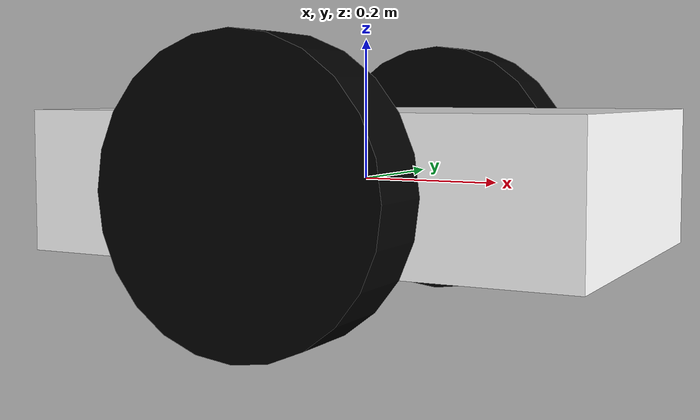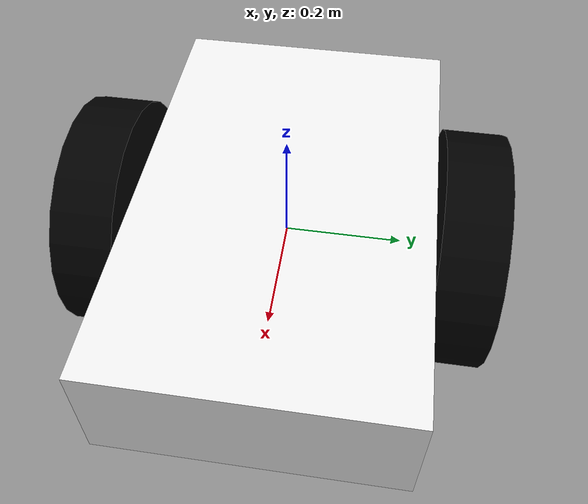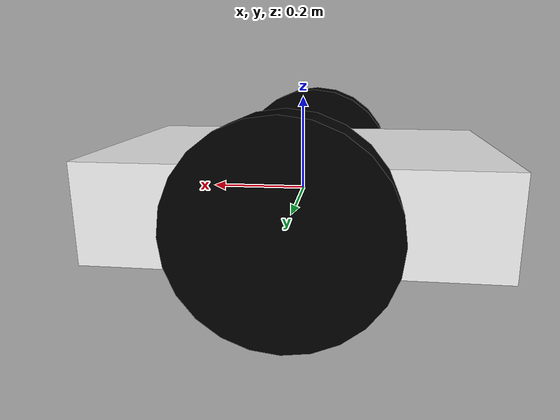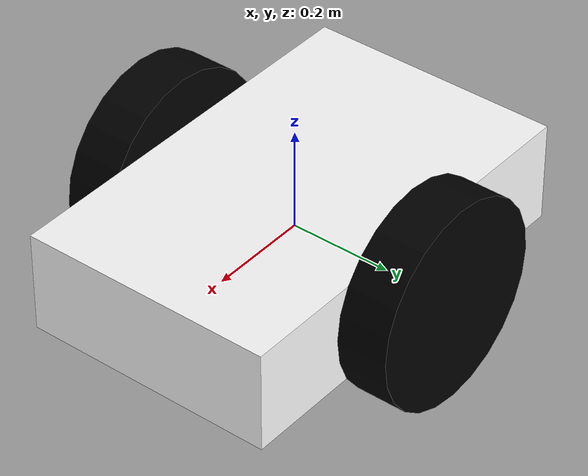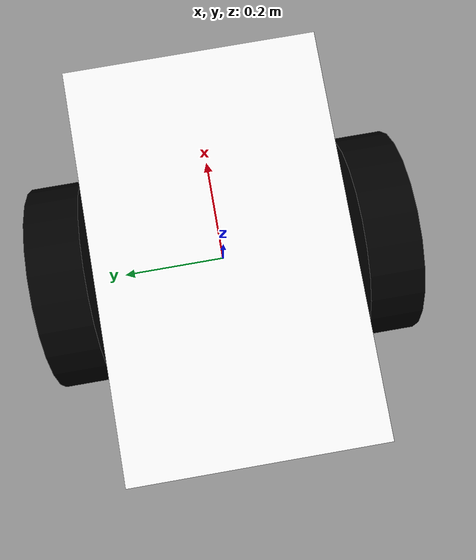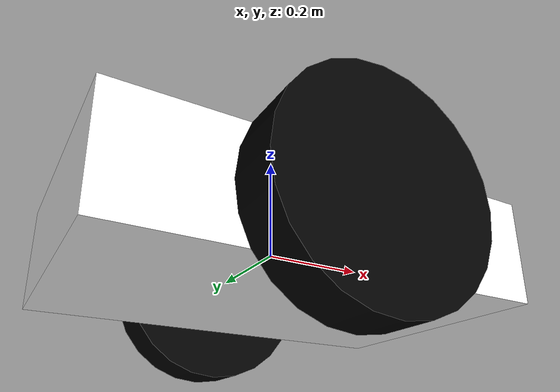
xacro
<?xml version="1.0"?>
<robot name="diffbot2"
  xmlns:xacro="http://ros.org/wiki/xacro">

  <!-- Arguments -->
  <xacro:arg name="base_width" default="0.5"/>
  <xacro:arg name="base_length" default="0.8"/>
  <xacro:arg name="base_height" default="0.2"/>

  <xacro:arg name="wheel_radius" default="0.2"/>
  <xacro:arg name="wheel_thickness" default="0.1"/>

  <!-- Include macros -->
  <xacro:include filename="$(find diffbot2_description)/urdf/wheel.xacro"/>

  <!-- Base -->
  <link name="base_link">
    <inertial>
      <origin xyz="0 0 0" rpy="0 0 0"/>
      <mass value="5"/>
      <inertia ixx="5" ixy="0" ixz="0" iyy="5" iyz="0" izz="5"/>
    </inertial>
    <visual>
      <geometry>
        <box size="$(arg base_length) $(arg base_width) $(arg base_height)"/>
      </geometry>
      <material name="white">
        <color rgba="1 1 1 1"/>
      </material>
    </visual>
    <collision>
      <origin xyz="0 0 0"/>
      <geometry>
        <box size="$(arg base_length) $(arg base_width) $(arg base_height)"/>
      </geometry>
    </collision>
  </link>

  <!-- Wheels -->
  <xacro:wheel name="left_wheel" parent="base_link" radius="$(arg wheel_radius)" thickness="$(arg wheel_thickness)">
    <origin xyz="0 ${$(arg base_width)/2 + $(arg wheel_thickness)/2} 0" rpy="${pi/2.} 0 0"/>
  </xacro:wheel>
  <xacro:wheel name="right_wheel" parent="base_link" radius="$(arg wheel_radius)" thickness="$(arg wheel_thickness)">
    <origin xyz="0 ${-$(arg base_width)/2. - $(arg wheel_thickness)/2.} 0" rpy="${pi/2.} 0 0"/>
  </xacro:wheel>

  <gazebo>
    <plugin
      filename="ignition-gazebo-diff-drive-system"
      name="ignition::gazebo::systems::DiffDrive">
      <left_joint>left_wheel_joint</left_joint>
      <right_joint>right_wheel_joint</right_joint>
      <wheel_separation>$(arg base_width)</wheel_separation>
      <wheel_radius>$(arg wheel_radius)</wheel_radius>
      <tf_topic>tf</tf_topic>
    </plugin>
  </gazebo>

</robot>

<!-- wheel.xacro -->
<robot xmlns:xacro="http://www.ros.org/wiki/xacro">

  <!-- Taken from https://github.com/ros-controls/ros_controllers/blob/noetic-devel/diff_drive_controller/test/wheel.xacro -->

  <xacro:macro name="wheel" params="name parent radius thickness *origin">
    <link name="${name}_link">
      <inertial>
        <origin xyz="0 0 0" rpy="0 0 0"/>
        <mass value="1"/>
        <inertia ixx="0.2" ixy="0" ixz="0" iyy="0.2" iyz="0" izz="0.2"/>
      </inertial>
      <visual>
        <origin xyz="0 0 0" rpy="0 0 0"/>
        <geometry>
          <cylinder radius="${radius}" length="${thickness}"/>
        </geometry>
        <material name="black">
          <color rgba="0 0 0 1"/>
        </material>
      </visual>
      <collision>
        <origin xyz="0 0 0" rpy="0 0 0"/>
        <geometry>
          <cylinder radius="${radius}" length="${thickness}"/>
        </geometry>
      </collision>
    </link>

    <joint name="${name}_joint" type="continuous">
      <parent link="${parent}"/>
      <child link="${name}_link"/>
      <xacro:insert_block name="origin"/>
      <axis xyz="0 0 1"/>
    </joint>
  </xacro:macro>

</robot>
